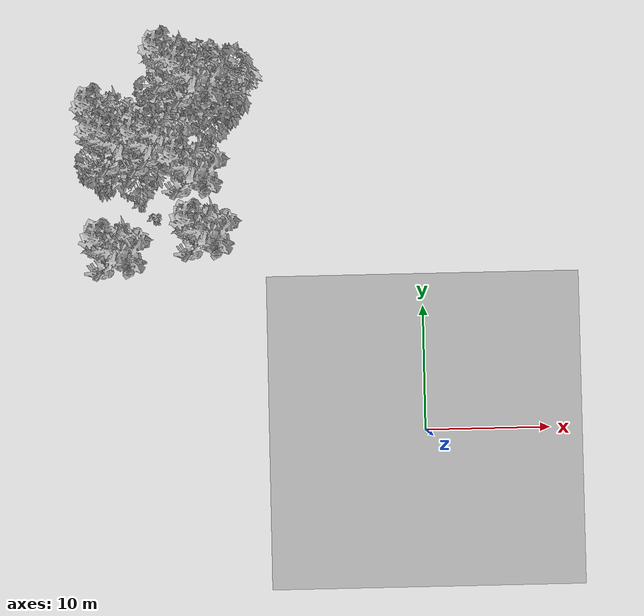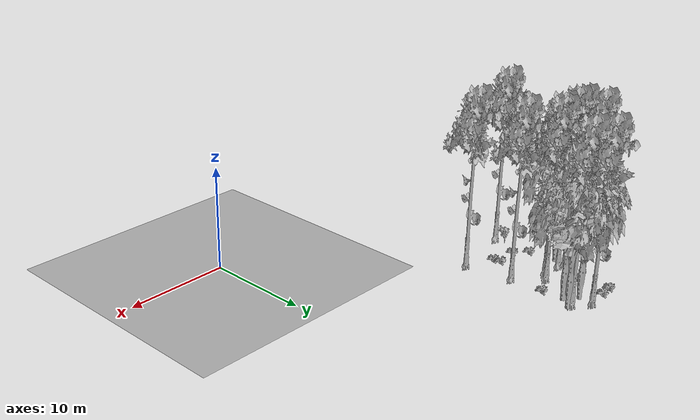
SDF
<sdf version="1.7">
 <world name="default">
  <model name="ground_plane">
   <static>1</static>
   <link name="link">
    <collision name="collision">
     <pose>-50 0 0 0 -0 0</pose>
     <geometry><plane><normal>0 0 1</normal><size>80 80</size></plane></geometry>
     <surface><contact><ode><min_depth>0.01</min_depth><max_vel>0</max_vel></ode></contact></surface>
    </collision>
    <visual name="grass">
     <cast_shadows>0</cast_shadows>
     <geometry>
      <mesh>
       <scale>0.46714285714285714 0.46714285714285714 0.1</scale>
       <uri>file://grass_plane/meshes/grass_plane.dae</uri>
      </mesh>
     </geometry>
    </visual>
   </link>
  </model>
  <model name="Tree 59">
   <static>1</static>
   <pose>-23.243009176583072 22.13697534460696 0 1.57079 -0 0</pose>
   <link name="link">
    <collision name="collision">
     <geometry><mesh><scale>3.5 5 3.5</scale><uri>model://tree_9/meshes/tree_9.obj</uri></mesh></geometry>
    </collision>
    <visual name="visual">
     <geometry><mesh><scale>3.5 5 3.5</scale><uri>model://tree_9/meshes/tree_9.obj</uri></mesh></geometry>
    </visual>
   </link>
  </model>
  <model name="Tree 82">
   <static>1</static>
   <pose>-17.42322386885214 20.15244711362552 0 1.57079 -0 0</pose>
   <link name="link">
    <collision name="collision">
     <geometry><mesh><scale>3.5 5 3.5</scale><uri>model://tree_9/meshes/tree_9.obj</uri></mesh></geometry>
    </collision>
    <visual name="visual">
     <geometry><mesh><scale>3.5 5 3.5</scale><uri>model://tree_9/meshes/tree_9.obj</uri></mesh></geometry>
    </visual>
   </link>
  </model>
  <model name="Tree 84">
   <static>1</static>
   <pose>-18.180490428227998 26.807379411045332 0 1.57079 -0 0</pose>
   <link name="link">
    <collision name="collision">
     <geometry><mesh><scale>3.5 5 3.5</scale><uri>model://tree_2/meshes/tree_2.obj</uri></mesh></geometry>
    </collision>
    <visual name="visual">
     <geometry><mesh><scale>3.5 5 3.5</scale><uri>model://tree_2/meshes/tree_2.obj</uri></mesh></geometry>
    </visual>
   </link>
  </model>
  <model name="Tree 93">
   <static>1</static>
   <pose>-17.18516182560061 26.68285317882892 0 1.57079 -0 0</pose>
   <link name="link">
    <collision name="collision">
     <geometry><mesh><scale>3.5 5 3.5</scale><uri>model://tree_9/meshes/tree_9.obj</uri></mesh></geometry>
    </collision>
    <visual name="visual">
     <geometry><mesh><scale>3.5 5 3.5</scale><uri>model://tree_9/meshes/tree_9.obj</uri></mesh></geometry>
    </visual>
   </link>
  </model>
  <model name="Tree 103">
   <static>1</static>
   <pose>-16.06024989685512 26.94486627542696 0 1.57079 -0 0</pose>
   <link name="link">
    <collision name="collision">
     <geometry><mesh><scale>3.5 5 3.5</scale><uri>model://tree_2/meshes/tree_2.obj</uri></mesh></geometry>
    </collision>
    <visual name="visual">
     <geometry><mesh><scale>3.5 5 3.5</scale><uri>model://tree_2/meshes/tree_2.obj</uri></mesh></geometry>
    </visual>
   </link>
  </model>
  <model name="Tree 210">
   <static>1</static>
   <pose>-22.723475344680814 21.36315774852644 0 1.57079 -0 0</pose>
   <link name="link">
    <collision name="collision">
     <geometry><mesh><scale>3.5 5 3.5</scale><uri>model://tree_2/meshes/tree_2.obj</uri></mesh></geometry>
    </collision>
    <visual name="visual">
     <geometry><mesh><scale>3.5 5 3.5</scale><uri>model://tree_2/meshes/tree_2.obj</uri></mesh></geometry>
    </visual>
   </link>
  </model>
  <model name="Tree 228">
   <static>1</static>
   <pose>-22.483417705352274 21.88157563365551 0 1.57079 -0 0</pose>
   <link name="link">
    <collision name="collision">
     <geometry><mesh><scale>3.5 5 3.5</scale><uri>model://tree_9/meshes/tree_9.obj</uri></mesh></geometry>
    </collision>
    <visual name="visual">
     <geometry><mesh><scale>3.5 5 3.5</scale><uri>model://tree_9/meshes/tree_9.obj</uri></mesh></geometry>
    </visual>
   </link>
  </model>
  <model name="Tree 230">
   <static>1</static>
   <pose>-19.593128310561518 22.454221581667795 0 1.57079 -0 0</pose>
   <link name="link">
    <collision name="collision">
     <geometry><mesh><scale>3.5 5 3.5</scale><uri>model://tree_9/meshes/tree_9.obj</uri></mesh></geometry>
    </collision>
    <visual name="visual">
     <geometry><mesh><scale>3.5 5 3.5</scale><uri>model://tree_9/meshes/tree_9.obj</uri></mesh></geometry>
    </visual>
   </link>
  </model>
  <model name="Tree 325">
   <static>1</static>
   <pose>-16.653471418050444 15.630645435427517 0 1.57079 -0 0</pose>
   <link name="link">
    <collision name="collision">
     <geometry><mesh><scale>3.5 5 3.5</scale><uri>model://tree_9/meshes/tree_9.obj</uri></mesh></geometry>
    </collision>
    <visual name="visual">
     <geometry><mesh><scale>3.5 5 3.5</scale><uri>model://tree_9/meshes/tree_9.obj</uri></mesh></geometry>
    </visual>
   </link>
  </model>
  <model name="Tree 346">
   <static>1</static>
   <pose>-23.560855420540765 23.899743300048883 0 1.57079 -0 0</pose>
   <link name="link">
    <collision name="collision">
     <geometry><mesh><scale>3.5 5 3.5</scale><uri>model://tree_9/meshes/tree_9.obj</uri></mesh></geometry>
    </collision>
    <visual name="visual">
     <geometry><mesh><scale>3.5 5 3.5</scale><uri>model://tree_9/meshes/tree_9.obj</uri></mesh></geometry>
    </visual>
   </link>
  </model>
  <model name="Tree 516">
   <static>1</static>
   <pose>-20.425086989146088 21.79372515652684 0 1.57079 -0 0</pose>
   <link name="link">
    <collision name="collision">
     <geometry><mesh><scale>3.5 5 3.5</scale><uri>model://tree_9/meshes/tree_9.obj</uri></mesh></geometry>
    </collision>
    <visual name="visual">
     <geometry><mesh><scale>3.5 5 3.5</scale><uri>model://tree_9/meshes/tree_9.obj</uri></mesh></geometry>
    </visual>
   </link>
  </model>
  <model name="Tree 547">
   <static>1</static>
   <pose>-23.08262562966987 14.374172457645884 0 1.57079 -0 0</pose>
   <link name="link">
    <collision name="collision">
     <geometry><mesh><scale>3.5 5 3.5</scale><uri>model://tree_9/meshes/tree_9.obj</uri></mesh></geometry>
    </collision>
    <visual name="visual">
     <geometry><mesh><scale>3.5 5 3.5</scale><uri>model://tree_9/meshes/tree_9.obj</uri></mesh></geometry>
    </visual>
   </link>
  </model>
  <model name="Tree 566">
   <static>1</static>
   <pose>-16.99613971117419 25.85586924390961 0 1.57079 -0 0</pose>
   <link name="link">
    <collision name="collision">
     <geometry><mesh><scale>3.5 5 3.5</scale><uri>model://tree_2/meshes/tree_2.obj</uri></mesh></geometry>
    </collision>
    <visual name="visual">
     <geometry><mesh><scale>3.5 5 3.5</scale><uri>model://tree_2/meshes/tree_2.obj</uri></mesh></geometry>
    </visual>
   </link>
  </model>
  <model name="Tree 578">
   <static>1</static>
   <pose>-18.653133365427145 27.834918256096046 0 1.57079 -0 0</pose>
   <link name="link">
    <collision name="collision">
     <geometry><mesh><scale>3.5 5 3.5</scale><uri>model://tree_9/meshes/tree_9.obj</uri></mesh></geometry>
    </collision>
    <visual name="visual">
     <geometry><mesh><scale>3.5 5 3.5</scale><uri>model://tree_9/meshes/tree_9.obj</uri></mesh></geometry>
    </visual>
   </link>
  </model>
  <model name="Bush 38">
   <static>1</static>
   <pose>-22.678435242700374 18.528843964969397 0 1.57079 -0 0</pose>
   <link name="link">
    <collision name="collision">
     <geometry><mesh><scale>2 2 2</scale><uri>model://bush_2/meshes/bush_2.obj</uri></mesh></geometry>
     <surface><contact><collide_without_contact>false</collide_without_contact></contact></surface>
    </collision>
    <visual name="visual">
     <geometry><mesh><scale>2 2 2</scale><uri>model://bush_2/meshes/bush_2.obj</uri></mesh></geometry>
    </visual>
   </link>
  </model>
  <model name="Bush 45">
   <static>1</static>
   <pose>-20.44363333835524 27.773902172020243 0 1.57079 -0 0</pose>
   <link name="link">
    <collision name="collision">
     <geometry><mesh><scale>2 2 2</scale><uri>model://bush_2/meshes/bush_2.obj</uri></mesh></geometry>
     <surface><contact><collide_without_contact>false</collide_without_contact></contact></surface>
    </collision>
    <visual name="visual">
     <geometry><mesh><scale>2 2 2</scale><uri>model://bush_2/meshes/bush_2.obj</uri></mesh></geometry>
    </visual>
   </link>
  </model>
  <model name="Bush 89">
   <static>1</static>
   <pose>-21.766032756476797 27.631895020414447 0 1.57079 -0 0</pose>
   <link name="link">
    <collision name="collision">
     <geometry><mesh><scale>2 2 2</scale><uri>model://bush_2/meshes/bush_2.obj</uri></mesh></geometry>
     <surface><contact><collide_without_contact>false</collide_without_contact></contact></surface>
    </collision>
    <visual name="visual">
     <geometry><mesh><scale>2 2 2</scale><uri>model://bush_2/meshes/bush_2.obj</uri></mesh></geometry>
    </visual>
   </link>
  </model>
  <model name="Bush 111">
   <static>1</static>
   <pose>-22.49686922914372 15.820510183811862 0 1.57079 -0 0</pose>
   <link name="link">
    <collision name="collision">
     <geometry><mesh><scale>2 2 2</scale><uri>model://bush_5/meshes/bush_5.obj</uri></mesh></geometry>
     <surface><contact><collide_without_contact>false</collide_without_contact></contact></surface>
    </collision>
    <visual name="visual">
     <geometry><mesh><scale>2 2 2</scale><uri>model://bush_5/meshes/bush_5.obj</uri></mesh></geometry>
    </visual>
   </link>
  </model>
  <model name="Bush 139">
   <static>1</static>
   <pose>-19.063263561690444 16.999781058538645 0 1.57079 -0 0</pose>
   <link name="link">
    <collision name="collision">
     <geometry><mesh><scale>2 2 2</scale><uri>model://bush_2/meshes/bush_2.obj</uri></mesh></geometry>
     <surface><contact><collide_without_contact>false</collide_without_contact></contact></surface>
    </collision>
    <visual name="visual">
     <geometry><mesh><scale>2 2 2</scale><uri>model://bush_2/meshes/bush_2.obj</uri></mesh></geometry>
    </visual>
   </link>
  </model>
  <model name="Bush 307">
   <static>1</static>
   <pose>-21.270279899656604 24.613698408676697 0 1.57079 -0 0</pose>
   <link name="link">
    <collision name="collision">
     <geometry><mesh><scale>2 2 2</scale><uri>model://bush_2/meshes/bush_2.obj</uri></mesh></geometry>
     <surface><contact><collide_without_contact>false</collide_without_contact></contact></surface>
    </collision>
    <visual name="visual">
     <geometry><mesh><scale>2 2 2</scale><uri>model://bush_2/meshes/bush_2.obj</uri></mesh></geometry>
    </visual>
   </link>
  </model>
  <model name="Bush 436">
   <static>1</static>
   <pose>-19.209027622154277 17.68685117543272 0 1.57079 -0 0</pose>
   <link name="link">
    <collision name="collision">
     <geometry><mesh><scale>2 2 2</scale><uri>model://bush_2/meshes/bush_2.obj</uri></mesh></geometry>
     <surface><contact><collide_without_contact>false</collide_without_contact></contact></surface>
    </collision>
    <visual name="visual">
     <geometry><mesh><scale>2 2 2</scale><uri>model://bush_2/meshes/bush_2.obj</uri></mesh></geometry>
    </visual>
   </link>
  </model>
  <model name="Bush 563">
   <static>1</static>
   <pose>-17.151159424149533 23.598410415763837 0 1.57079 -0 0</pose>
   <link name="link">
    <collision name="collision">
     <geometry><mesh><scale>2 2 2</scale><uri>model://bush_2/meshes/bush_2.obj</uri></mesh></geometry>
     <surface><contact><collide_without_contact>false</collide_without_contact></contact></surface>
    </collision>
    <visual name="visual">
     <geometry><mesh><scale>2 2 2</scale><uri>model://bush_2/meshes/bush_2.obj</uri></mesh></geometry>
    </visual>
   </link>
  </model>
  <model name="Bush 619">
   <static>1</static>
   <pose>-21.4902839717523 17.445228040510592 0 1.57079 -0 0</pose>
   <link name="link">
    <collision name="collision">
     <geometry><mesh><scale>2 2 2</scale><uri>model://bush_2/meshes/bush_2.obj</uri></mesh></geometry>
     <surface><contact><collide_without_contact>false</collide_without_contact></contact></surface>
    </collision>
    <visual name="visual">
     <geometry><mesh><scale>2 2 2</scale><uri>model://bush_2/meshes/bush_2.obj</uri></mesh></geometry>
    </visual>
   </link>
  </model>
 </world>
</sdf>
